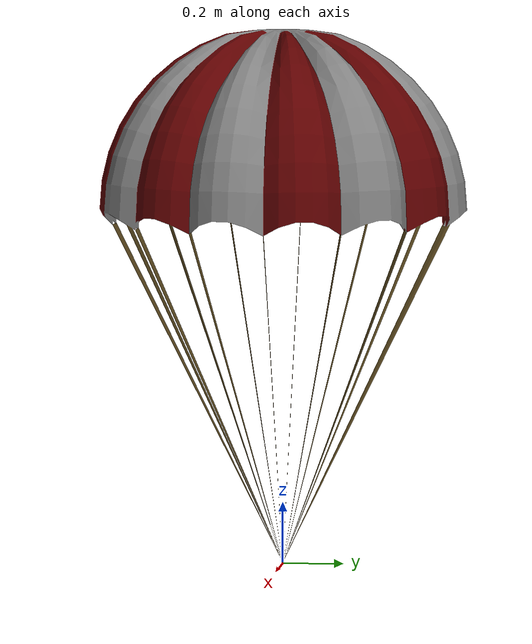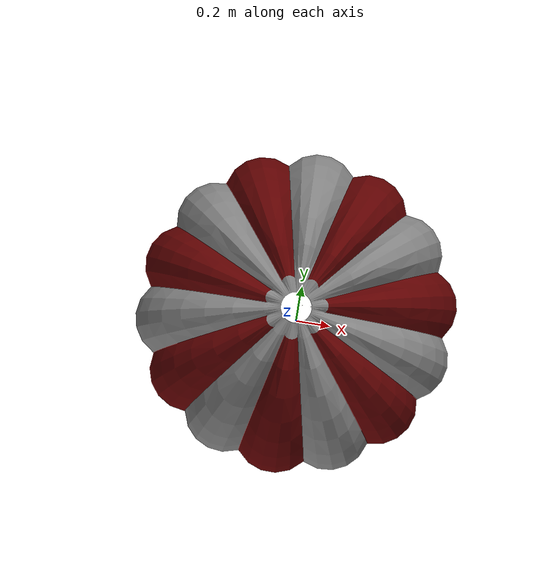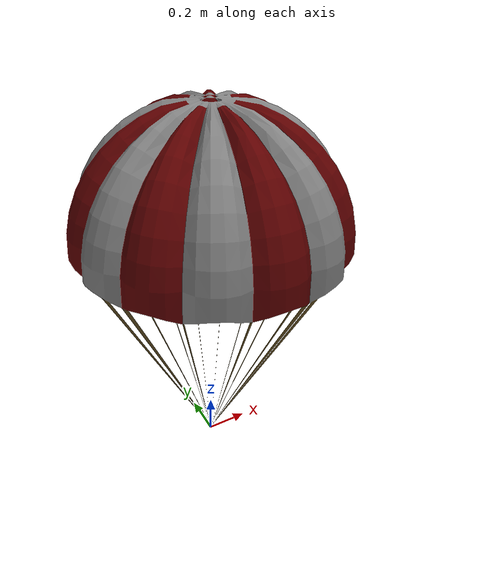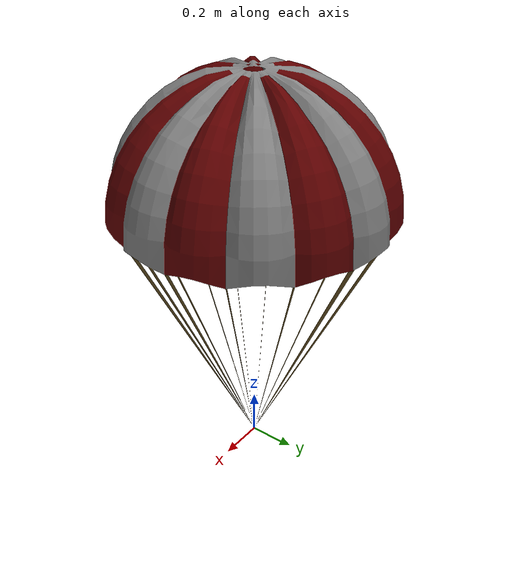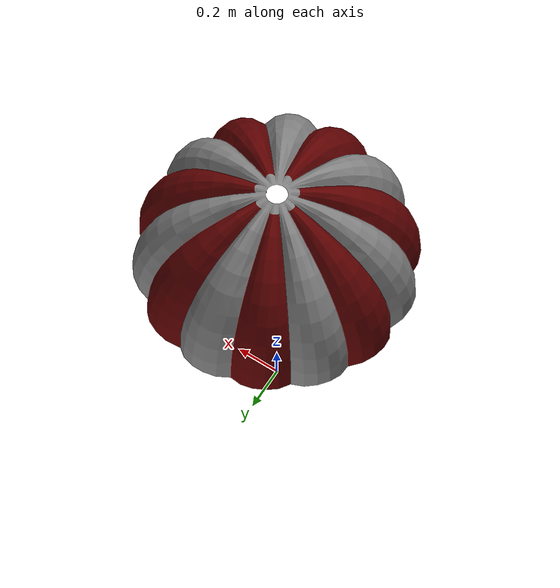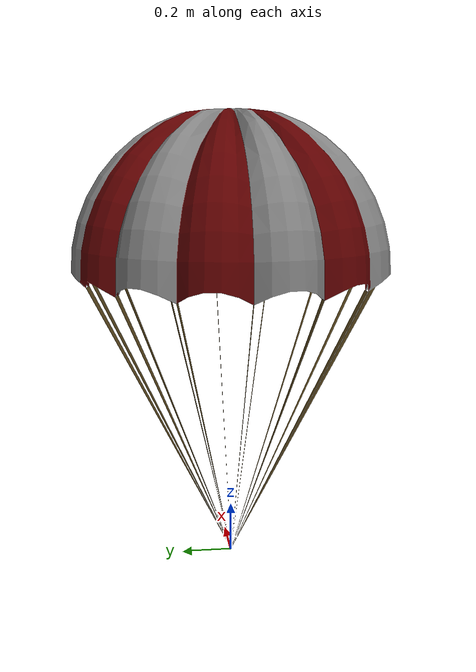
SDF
<?xml version="1.0" ?>
<sdf version="1.5">
  <model name="parachute_small">
    <pose>0 0 0 0 0 0</pose>
    <static>false</static>

    <link name="chute">
      <pose>0 0 0  0 0 0</pose>
      <inertial>
        <pose>0 0 0  0 0 0</pose>
        <mass>0.100000</mass>
        <inertia>
          <ixx>0.010000</ixx>
          <ixy>0.000000</ixy>
          <ixz>0.000000</ixz>
          <iyy>0.010000</iyy>
          <iyz>0.000000</iyz>
          <izz>0.010000</izz>
        </inertia>
      </inertial>
      <collision name="parachute_collision">
        <pose>0 0 1.25  0 0 0</pose>
        <geometry>
          <cylinder>
            <radius>0.35</radius>
            <length>0.4</length>
          </cylinder>
        </geometry>
      </collision>
      <visual name="parachute_vis">
        <pose>-0.000000 0.000000 0.000000 0.000000 -0.000000 0.000000</pose>
        <geometry>
          <mesh>
            <scale>1 1 1</scale>
            <uri>model://parachute_small/meshes/parachute_small.dae</uri>
          </mesh>
        </geometry>
      </visual>
      <velocity_decay />
    </link>

    <plugin name="parachute_drag" filename="libLiftDragPlugin.so">
      <a0>0</a0>
      <cla>0</cla>
      <cda>1.114</cda>  <!-- Such that Cd = 1.75 at alpha = 90deg (= upright parachute) -->
      <cma>0</cma>
      <alpha_stall>1.5708</alpha_stall> <!-- = upright parachute -->
      <cla_stall>0</cla_stall>
      <cda_stall>0.01</cda_stall>
      <cma_stall>0</cma_stall>
      <cp>0 0 1.25</cp>   <!-- About the vertical center of the chute -->
      <area>3</area>   <!-- Area of a circle of diameter 1m = 0.79, 3m2 is for a better visualization -->
      <air_density>1.2041</air_density>
      <forward>1 0 0</forward>
      <upward>0 0 1</upward>
      <link_name>chute</link_name>
    </plugin>

  </model>
</sdf>
